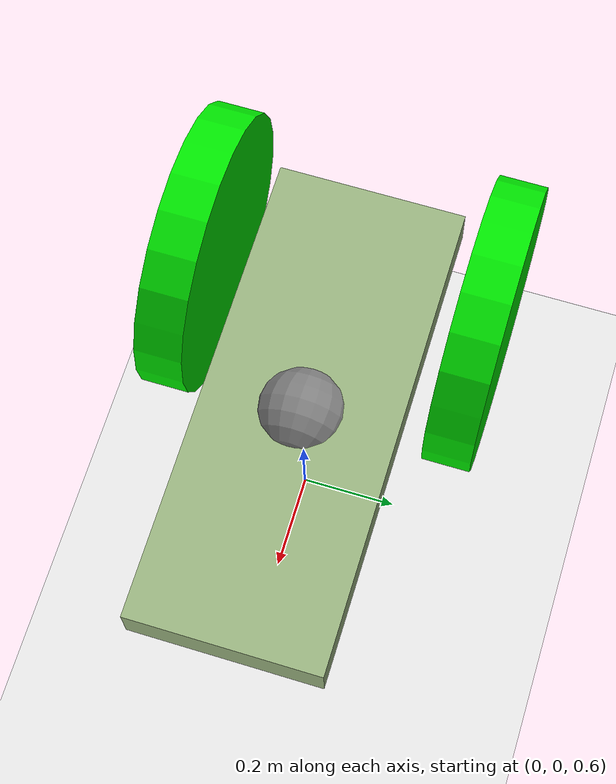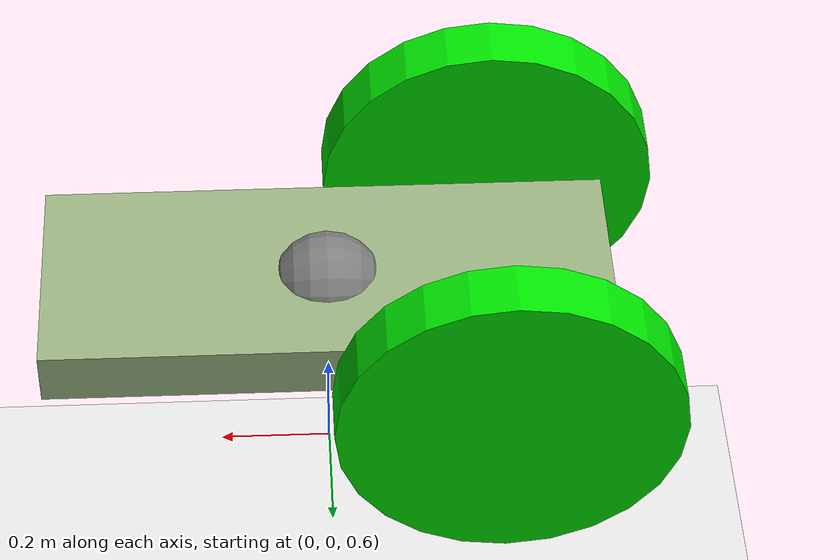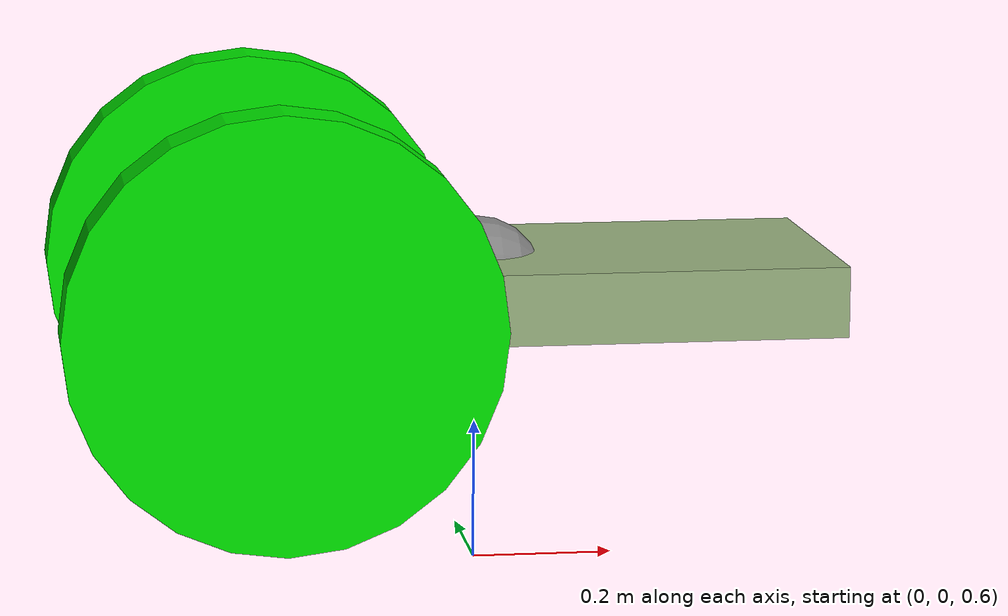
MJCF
<mujoco>
    <option gravity="0 0 -9.81"/>

    <worldbody>
        <light diffuse=".5 .5 .5" pos="0 0 3" dir="0 0 -1"/>
        <geom type="plane" size="5 5 .1" rgba=".9 .9 .9 1"/>
        <body name="chasis" pos="0 0 1" euler='0 90 0'>
            <joint type="free"/>
            <geom type="box" size=".05 .2 .5" rgba=".6 .7 .5 1"/>
            <site name="marker" pos="0 0 0" size="0.1"/>

            <body name="wheel_body_left" pos="0 0.3 -0.3" euler="90 0 0">
                <joint name="wheel_left" type="hinge" axis="0 0 -1"/>
                <geom type="cylinder" size=".3 0.05" rgba="0 .9 0 1"/>
            </body>
            <body name="wheel_body_right" pos="0 -0.3 -0.3" euler="90 0 0">
                <joint name="wheel_right" type="hinge" axis="0 0 -1"/>
                <geom type="cylinder" size=".3 0.05" rgba="0 .9 0 1"/>
            </body>

        </body>
    </worldbody>

    <actuator>
        <velocity name="left_servo" joint="wheel_left" kv="100"/>
        <velocity name="right_servo" joint="wheel_right" kv="100"/>
    </actuator>

    <sensor>
        <framepos objtype="site" objname="marker"/>
    </sensor>

</mujoco>
